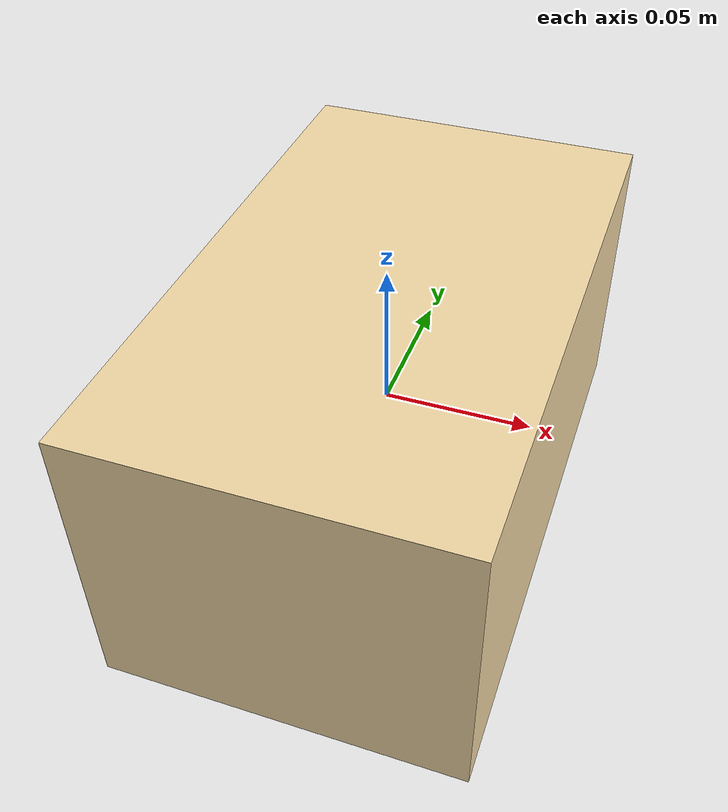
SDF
<?xml version="1.0" ?>
<sdf version="1.7">
  <model name="neck_block">
    <static>false</static>
    <link name="neck">
      <inertial><mass>1.0</mass><pose>0 0 0 0 0 0</pose>
        <inertia><ixx>0.002</ixx><ixy>0</ixy><ixz>0</ixz><iyy>0.002</iyy><iyz>0</iyz><izz>0.002</izz></inertia>
      </inertial>
      <visual name="vis"><geometry><box><size>0.12 0.20 0.10</size></box></geometry>
        <material><diffuse>0.95 0.85 0.65 1</diffuse></material></visual>
      <collision name="col"><geometry><box><size>0.12 0.20 0.10</size></box></geometry></collision>
    </link>
  </model>
</sdf>
